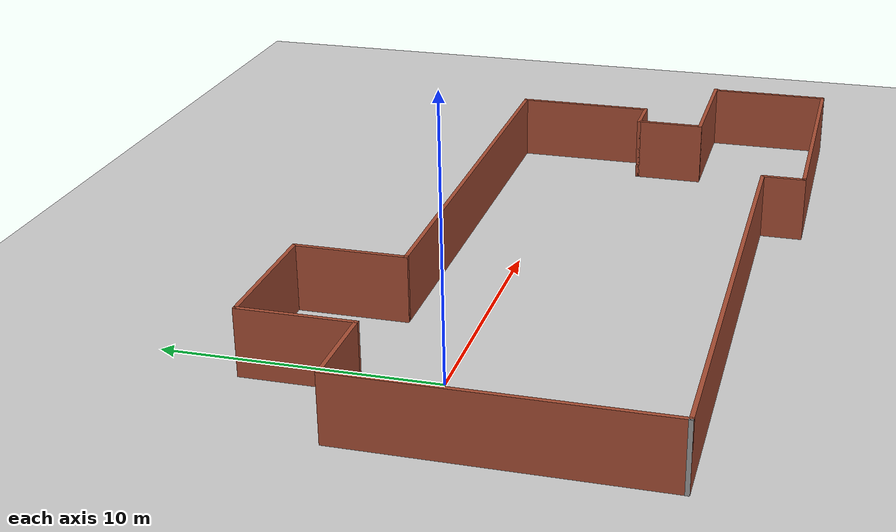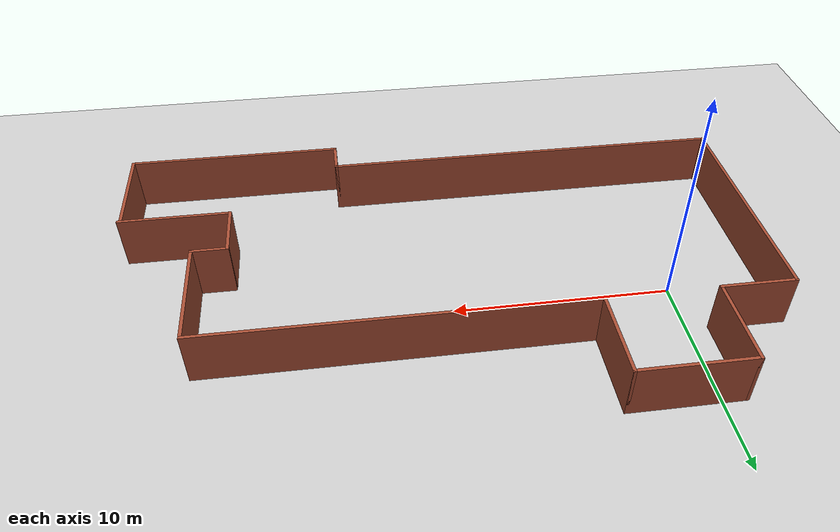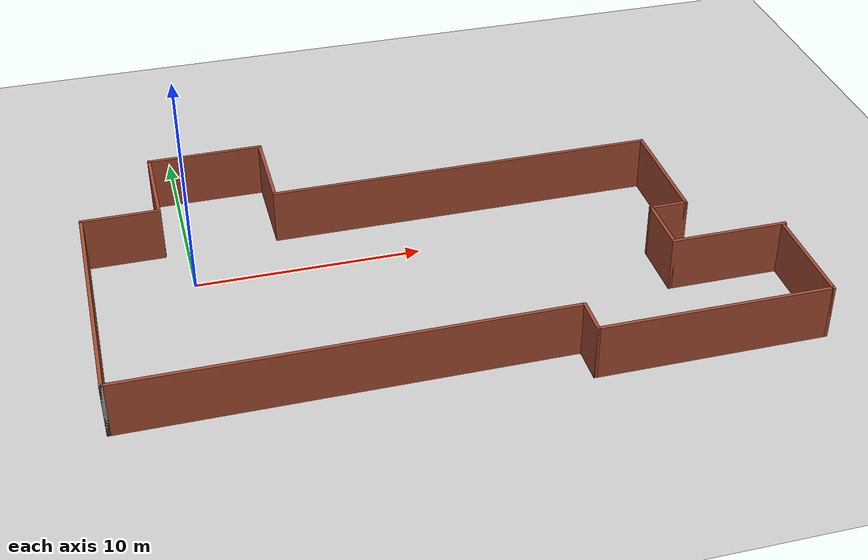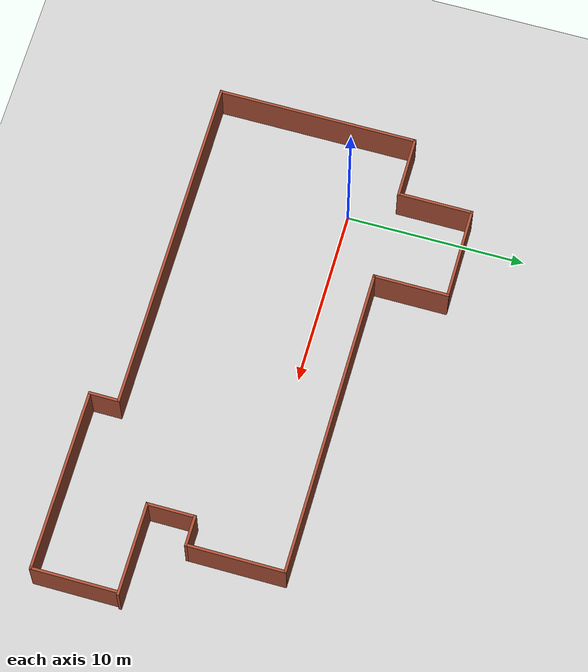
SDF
<sdf version="1.7">
 <world name="default">
  <light name="sun" type="directional">
   <pose>0 0 10 0 -0 0</pose>
   <diffuse>0.8 0.8 0.8 1</diffuse>
   <specular>0.2 0.2 0.2 1</specular>
   <attenuation>
    <range>1000</range>
    <constant>0.9</constant>
    <linear>0.01</linear>
    <quadratic>0.001</quadratic>
   </attenuation>
   <direction>-0.5 0.1 -0.9</direction>
   <spot><inner_angle>0</inner_angle><outer_angle>0</outer_angle><falloff>0</falloff></spot>
  </light>
  <model name="ground_plane">
   <static>1</static>
   <link name="link">
    <collision name="collision">
     <geometry><plane><normal>0 0 1</normal><size>100 100</size></plane></geometry>
     <surface>
      <contact><collide_bitmask>65535</collide_bitmask></contact>
      <friction><ode><mu>100</mu><mu2>50</mu2></ode></friction>
     </surface>
    </collision>
    <visual name="visual">
     <cast_shadows>0</cast_shadows>
     <geometry><plane><normal>0 0 1</normal><size>100 100</size></plane></geometry>
     <material>
      <script><uri>file://media/materials/scripts/gazebo.material</uri><name>Gazebo/Grey</name></script>
     </material>
    </visual>
   </link>
  </model>
  <gravity>0 0 -9.8</gravity>
  <magnetic_field>6e-06 2.3e-05 -4.2e-05</magnetic_field>
  <atmosphere type="adiabatic"/>
  <physics type="ode">
   <max_step_size>0.001</max_step_size>
   <real_time_factor>1</real_time_factor>
   <real_time_update_rate>1000</real_time_update_rate>
  </physics>
  <scene><ambient>0.4 0.4 0.4 1</ambient><background>0.7 0.7 0.7 1</background><shadows>1</shadows></scene>
  <audio><device>default</device></audio>
  <spherical_coordinates>
   <surface_model>EARTH_WGS84</surface_model>
   <latitude_deg>0</latitude_deg>
   <longitude_deg>0</longitude_deg>
   <elevation>0</elevation>
   <heading_deg>0</heading_deg>
  </spherical_coordinates>
  <model name="new_world">
   <pose>10.2416 -1.7585 0 0 -0 0</pose>
   <link name="Wall_0">
    <collision name="Wall_0_Collision">
     <geometry><box><size>0.16 0.15 2.5</size></box></geometry>
     <pose>0 0 1.25 0 -0 0</pose>
    </collision>
    <visual name="Wall_0_Visual">
     <pose>0 0 1.25 0 -0 0</pose>
     <geometry><box><size>0.16 0.15 2.5</size></box></geometry>
     <material>
      <script><uri>file://media/materials/scripts/gazebo.material</uri><name>Gazebo/Grey</name></script>
      <ambient>1 1 1 1</ambient>
     </material>
     <meta><layer>0</layer></meta>
    </visual>
    <pose>-14.65 -6.8 0 0 -0 0</pose>
   </link>
   <link name="Wall_1">
    <collision name="Wall_1_Collision">
     <geometry><box><size>11.25 0.15 2.5</size></box></geometry>
     <pose>0 0 1.25 0 -0 0</pose>
    </collision>
    <visual name="Wall_1_Visual">
     <pose>0 0 1.25 0 -0 0</pose>
     <geometry><box><size>11.25 0.15 2.5</size></box></geometry>
     <material>
      <script><uri>file://media/materials/scripts/gazebo.material</uri><name>Gazebo/Bricks</name></script>
      <ambient>1 1 1 1</ambient>
     </material>
     <meta><layer>0</layer></meta>
    </visual>
    <pose>-14.645 -1.25 0 0 -0 1.5708</pose>
   </link>
   <link name="Wall_10">
    <collision name="Wall_10_Collision">
     <geometry><box><size>5.25 0.15 2.5</size></box></geometry>
     <pose>0 0 1.25 0 -0 0</pose>
    </collision>
    <visual name="Wall_10_Visual">
     <pose>0 0 1.25 0 -0 0</pose>
     <geometry><box><size>5.25 0.15 2.5</size></box></geometry>
     <material>
      <script><uri>file://media/materials/scripts/gazebo.material</uri><name>Gazebo/Bricks</name></script>
      <ambient>1 1 1 1</ambient>
     </material>
     <meta><layer>0</layer></meta>
    </visual>
    <pose>12.105 -3.65 0 0 -0 0</pose>
   </link>
   <link name="Wall_15">
    <collision name="Wall_15_Collision">
     <geometry><box><size>19.25 0.15 2.5</size></box></geometry>
     <pose>0 0 1.25 0 -0 0</pose>
    </collision>
    <visual name="Wall_15_Visual">
     <pose>0 0 1.25 0 -0 0</pose>
     <geometry><box><size>19.25 0.15 2.5</size></box></geometry>
     <material>
      <script><uri>file://media/materials/scripts/gazebo.material</uri><name>Gazebo/Bricks</name></script>
      <ambient>1 1 1 1</ambient>
     </material>
     <meta><layer>0</layer></meta>
    </visual>
    <pose>-5.095 -6.8 0 0 -0 0</pose>
   </link>
   <link name="Wall_16">
    <collision name="Wall_16_Collision">
     <geometry><box><size>1.75 0.15 2.5</size></box></geometry>
     <pose>0 0 1.25 0 -0 0</pose>
    </collision>
    <visual name="Wall_16_Visual">
     <pose>0 0 1.25 0 -0 0</pose>
     <geometry><box><size>1.75 0.15 2.5</size></box></geometry>
     <material>
      <script><uri>file://media/materials/scripts/gazebo.material</uri><name>Gazebo/Bricks</name></script>
      <ambient>1 1 1 1</ambient>
     </material>
     <meta><layer>0</layer></meta>
    </visual>
    <pose>4.455 -7.6 0 0 -0 -1.5708</pose>
   </link>
   <link name="Wall_2">
    <collision name="Wall_2_Collision">
     <geometry><box><size>3.5 0.15 2.5</size></box></geometry>
     <pose>0 0 1.25 0 -0 0</pose>
    </collision>
    <visual name="Wall_2_Visual">
     <pose>0 0 1.25 0 -0 0</pose>
     <geometry><box><size>3.5 0.15 2.5</size></box></geometry>
     <material>
      <script><uri>file://media/materials/scripts/gazebo.material</uri><name>Gazebo/Bricks</name></script>
      <ambient>1 1 1 1</ambient>
     </material>
     <meta><layer>0</layer></meta>
    </visual>
    <pose>-12.97 4.3 0 0 -0 0</pose>
   </link>
   <link name="Wall_20">
    <collision name="Wall_20_Collision">
     <geometry><box><size>10.25 0.15 2.5</size></box></geometry>
     <pose>0 0 1.25 0 -0 0</pose>
    </collision>
    <visual name="Wall_20_Visual">
     <pose>0 0 1.25 0 -0 0</pose>
     <geometry><box><size>10.25 0.15 2.5</size></box></geometry>
     <material>
      <script><uri>file://media/materials/scripts/gazebo.material</uri><name>Gazebo/Bricks</name></script>
      <ambient>1 1 1 1</ambient>
     </material>
     <meta><layer>0</layer></meta>
    </visual>
    <pose>9.505 -8.4 0 0 -0 0</pose>
   </link>
   <link name="Wall_21">
    <collision name="Wall_21_Collision">
     <geometry><box><size>4.75 0.15 2.5</size></box></geometry>
     <pose>0 0 1.25 0 -0 0</pose>
    </collision>
    <visual name="Wall_21_Visual">
     <pose>0 0 1.25 0 -0 0</pose>
     <geometry><box><size>4.75 0.15 2.5</size></box></geometry>
     <material>
      <script><uri>file://media/materials/scripts/gazebo.material</uri><name>Gazebo/Bricks</name></script>
      <ambient>1 1 1 1</ambient>
     </material>
     <meta><layer>0</layer></meta>
    </visual>
    <pose>14.555 -6.1 0 0 -0 1.5708</pose>
   </link>
   <link name="Wall_3">
    <collision name="Wall_3_Collision">
     <geometry><box><size>4.25 0.15 2.5</size></box></geometry>
     <pose>0 0 1.25 0 -0 0</pose>
    </collision>
    <visual name="Wall_3_Visual">
     <pose>0 0 1.25 0 -0 0</pose>
     <geometry><box><size>4.25 0.15 2.5</size></box></geometry>
     <material>
      <script><uri>file://media/materials/scripts/gazebo.material</uri><name>Gazebo/Bricks</name></script>
      <ambient>1 1 1 1</ambient>
     </material>
     <meta><layer>0</layer></meta>
    </visual>
    <pose>-11.295 6.35 0 0 -0 1.5708</pose>
   </link>
   <link name="Wall_4">
    <collision name="Wall_4_Collision">
     <geometry><box><size>5.25 0.15 2.5</size></box></geometry>
     <pose>0 0 1.25 0 -0 0</pose>
    </collision>
    <visual name="Wall_4_Visual">
     <pose>0 0 1.25 0 -0 0</pose>
     <geometry><box><size>5.25 0.15 2.5</size></box></geometry>
     <material>
      <script><uri>file://media/materials/scripts/gazebo.material</uri><name>Gazebo/Bricks</name></script>
      <ambient>1 1 1 1</ambient>
     </material>
     <meta><layer>0</layer></meta>
    </visual>
    <pose>-8.745 8.4 0 0 -0 0</pose>
   </link>
   <link name="Wall_5">
    <collision name="Wall_5_Collision">
     <geometry><box><size>4.25 0.15 2.5</size></box></geometry>
     <pose>0 0 1.25 0 -0 0</pose>
    </collision>
    <visual name="Wall_5_Visual">
     <pose>0 0 1.25 0 -0 0</pose>
     <geometry><box><size>4.25 0.15 2.5</size></box></geometry>
     <material>
      <script><uri>file://media/materials/scripts/gazebo.material</uri><name>Gazebo/Bricks</name></script>
      <ambient>1 1 1 1</ambient>
     </material>
     <meta><layer>0</layer></meta>
    </visual>
    <pose>-6.195 6.35 0 0 -0 -1.5708</pose>
   </link>
   <link name="Wall_6">
    <collision name="Wall_6_Collision">
     <geometry><box><size>17.5 0.15 2.5</size></box></geometry>
     <pose>0 0 1.25 0 -0 0</pose>
    </collision>
    <visual name="Wall_6_Visual">
     <pose>0 0 1.25 0 -0 0</pose>
     <geometry><box><size>17.5 0.15 2.5</size></box></geometry>
     <material>
      <script><uri>file://media/materials/scripts/gazebo.material</uri><name>Gazebo/Bricks</name></script>
      <ambient>1 1 1 1</ambient>
     </material>
     <meta><layer>0</layer></meta>
    </visual>
    <pose>2.48 4.3 0 0 -0 0</pose>
   </link>
   <link name="Wall_7">
    <collision name="Wall_7_Collision">
     <geometry><box><size>5.5 0.15 2.5</size></box></geometry>
     <pose>0 0 1.25 0 -0 0</pose>
    </collision>
    <visual name="Wall_7_Visual">
     <pose>0 0 1.25 0 -0 0</pose>
     <geometry><box><size>5.5 0.15 2.5</size></box></geometry>
     <material>
      <script><uri>file://media/materials/scripts/gazebo.material</uri><name>Gazebo/Bricks</name></script>
      <ambient>1 1 1 1</ambient>
     </material>
     <meta><layer>0</layer></meta>
    </visual>
    <pose>11.155 1.625 0 0 -0 -1.5708</pose>
   </link>
   <link name="Wall_8">
    <collision name="Wall_8_Collision">
     <geometry><box><size>1.75 0.15 2.5</size></box></geometry>
     <pose>0 0 1.25 0 -0 0</pose>
    </collision>
    <visual name="Wall_8_Visual">
     <pose>0 0 1.25 0 -0 0</pose>
     <geometry><box><size>1.75 0.15 2.5</size></box></geometry>
     <material>
      <script><uri>file://media/materials/scripts/gazebo.material</uri><name>Gazebo/Bricks</name></script>
      <ambient>1 1 1 1</ambient>
     </material>
     <meta><layer>0</layer></meta>
    </visual>
    <pose>10.355 -1.05 0 0 -0 3.14159</pose>
   </link>
   <link name="Wall_9">
    <collision name="Wall_9_Collision">
     <geometry><box><size>2.75 0.15 2.5</size></box></geometry>
     <pose>0 0 1.25 0 -0 0</pose>
    </collision>
    <visual name="Wall_9_Visual">
     <pose>0 0 1.25 0 -0 0</pose>
     <geometry><box><size>2.75 0.15 2.5</size></box></geometry>
     <material>
      <script><uri>file://media/materials/scripts/gazebo.material</uri><name>Gazebo/Bricks</name></script>
      <ambient>1 1 1 1</ambient>
     </material>
     <meta><layer>0</layer></meta>
    </visual>
    <pose>9.555 -2.35 0 0 -0 -1.5708</pose>
   </link>
   <static>1</static>
  </model>
 </world>
</sdf>
